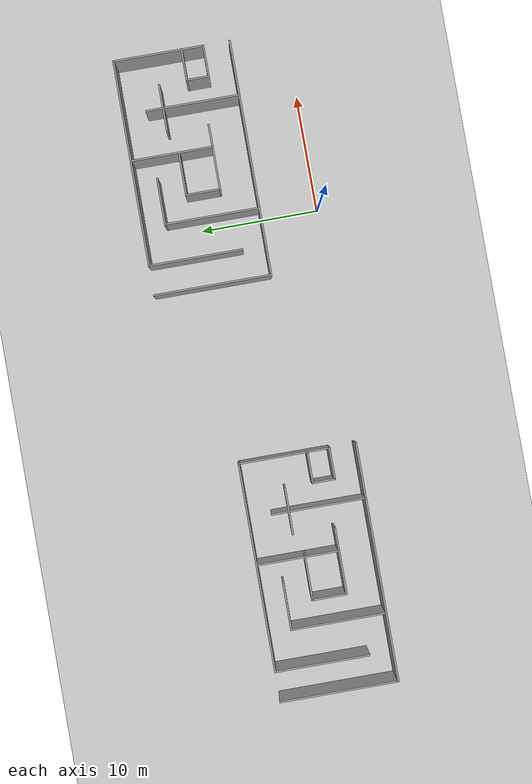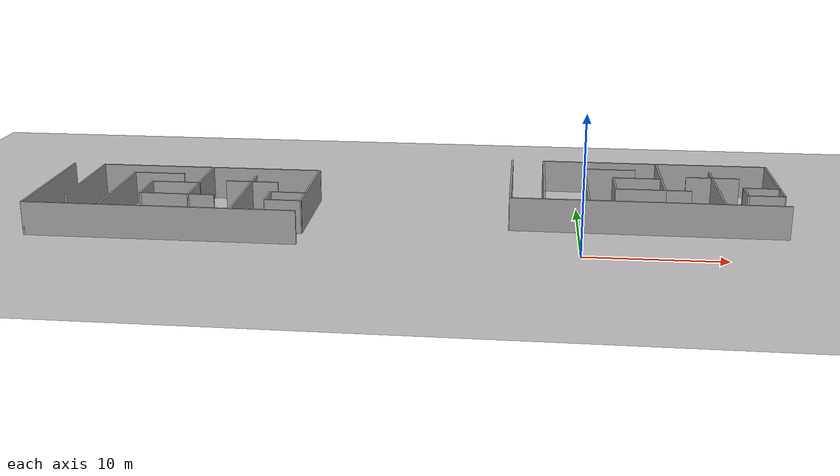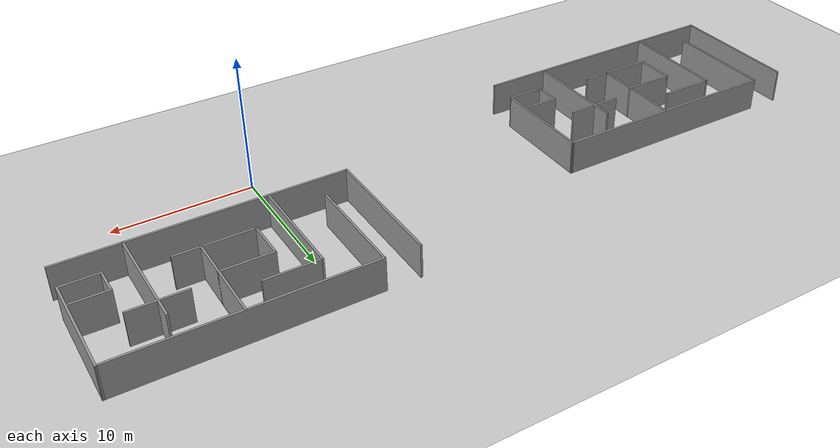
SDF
<sdf version="1.6">
 <world name="default">
  <light name="sun" type="directional">
   <pose>0 0 10 0 -0 0</pose>
   <diffuse>0.8 0.8 0.8 1</diffuse>
   <specular>0.2 0.2 0.2 1</specular>
   <attenuation>
    <range>1000</range>
    <constant>0.9</constant>
    <linear>0.01</linear>
    <quadratic>0.001</quadratic>
   </attenuation>
   <direction>-0.5 0.1 -0.9</direction>
  </light>
  <model name="ground_plane">
   <static>1</static>
   <link name="link">
    <collision name="collision">
     <geometry><plane><normal>0 0 1</normal><size>100 100</size></plane></geometry>
     <surface>
      <contact><collide_bitmask>65535</collide_bitmask></contact>
      <friction><ode><mu>100</mu><mu2>50</mu2></ode></friction>
     </surface>
    </collision>
    <visual name="visual">
     <cast_shadows>0</cast_shadows>
     <geometry><plane><normal>0 0 1</normal><size>100 100</size></plane></geometry>
     <material>
      <script><uri>file://media/materials/scripts/gazebo.material</uri><name>Gazebo/Grey</name></script>
     </material>
    </visual>
   </link>
  </model>
  <gravity>0 0 -9.8</gravity>
  <magnetic_field>6e-06 2.3e-05 -4.2e-05</magnetic_field>
  <atmosphere type="adiabatic"/>
  <physics name="default_physics" default="0" type="ode">
   <max_step_size>0.001</max_step_size>
   <real_time_factor>1</real_time_factor>
   <real_time_update_rate>1000</real_time_update_rate>
  </physics>
  <scene><ambient>0.4 0.4 0.4 1</ambient><background>0.7 0.7 0.7 1</background><shadows>1</shadows></scene>
  <spherical_coordinates>
   <surface_model>EARTH_WGS84</surface_model>
   <latitude_deg>0</latitude_deg>
   <longitude_deg>0</longitude_deg>
   <elevation>0</elevation>
   <heading_deg>0</heading_deg>
  </spherical_coordinates>
  <model name="train_8">
   <pose>4.94907 9.85301 0 0 -0 0</pose>
   <link name="Wall_1">
    <collision name="Wall_1_Collision">
     <geometry><box><size>10 0.15 2.5</size></box></geometry>
     <pose>0 0 1.25 0 -0 0</pose>
    </collision>
    <visual name="Wall_1_Visual">
     <pose>0 0 1.25 0 -0 0</pose>
     <geometry><box><size>10 0.15 2.5</size></box></geometry>
     <material>
      <script><uri>file://media/materials/scripts/gazebo.material</uri><name>Gazebo/Grey</name></script>
      <ambient>1 1 1 1</ambient>
     </material>
     <meta><layer>0</layer></meta>
    </visual>
    <pose>-9.92506 -5.7e-05 0 0 0 -1.5708</pose>
   </link>
   <link name="Wall_10">
    <collision name="Wall_10_Collision">
     <geometry><box><size>8 0.15 2.5</size></box></geometry>
     <pose>0 0 1.25 0 -0 0</pose>
    </collision>
    <visual name="Wall_10_Visual">
     <pose>0 0 1.25 0 -0 0</pose>
     <geometry><box><size>8 0.15 2.5</size></box></geometry>
     <material>
      <script><uri>file://media/materials/scripts/gazebo.material</uri><name>Gazebo/Grey</name></script>
      <ambient>1 1 1 1</ambient>
     </material>
     <meta><layer>0</layer></meta>
    </visual>
    <pose>-4.25956 -0.905556 0 0 0 -1.5708</pose>
   </link>
   <link name="Wall_17">
    <collision name="Wall_17_Collision">
     <geometry><box><size>4 0.15 2.5</size></box></geometry>
     <pose>0 0 1.25 0 -0 0</pose>
    </collision>
    <visual name="Wall_17_Visual">
     <pose>0 0 1.25 0 -0 0</pose>
     <geometry><box><size>4 0.15 2.5</size></box></geometry>
     <material>
      <script><uri>file://media/materials/scripts/gazebo.material</uri><name>Gazebo/Grey</name></script>
      <ambient>1 1 1 1</ambient>
     </material>
     <meta><layer>0</layer></meta>
    </visual>
    <pose>-2.33456 3.01944 0 0 -0 0</pose>
   </link>
   <link name="Wall_19">
    <collision name="Wall_19_Collision">
     <geometry><box><size>7 0.15 2.5</size></box></geometry>
     <pose>0 0 1.25 0 -0 0</pose>
    </collision>
    <visual name="Wall_19_Visual">
     <pose>0 0 1.25 0 -0 0</pose>
     <geometry><box><size>7 0.15 2.5</size></box></geometry>
     <material>
      <script><uri>file://media/materials/scripts/gazebo.material</uri><name>Gazebo/Grey</name></script>
      <ambient>1 1 1 1</ambient>
     </material>
     <meta><layer>0</layer></meta>
    </visual>
    <pose>1.44044 1.44444 0 0 -0 1.5708</pose>
   </link>
   <link name="Wall_2">
    <collision name="Wall_2_Collision">
     <geometry><box><size>20 0.15 2.5</size></box></geometry>
     <pose>0 0 1.25 0 -0 0</pose>
    </collision>
    <visual name="Wall_2_Visual">
     <pose>0 0 1.25 0 -0 0</pose>
     <geometry><box><size>20 0.15 2.5</size></box></geometry>
     <material>
      <script><uri>file://media/materials/scripts/gazebo.material</uri><name>Gazebo/Grey</name></script>
      <ambient>1 1 1 1</ambient>
     </material>
     <meta><layer>0</layer></meta>
    </visual>
    <pose>-5.6e-05 -4.92506 0 0 -0 0</pose>
   </link>
   <link name="Wall_23">
    <collision name="Wall_23_Collision">
     <geometry><box><size>3.75 0.15 2.5</size></box></geometry>
     <pose>0 0 1.25 0 -0 0</pose>
    </collision>
    <visual name="Wall_23_Visual">
     <pose>0 0 1.25 0 -0 0</pose>
     <geometry><box><size>3.75 0.15 2.5</size></box></geometry>
     <material>
      <script><uri>file://media/materials/scripts/gazebo.material</uri><name>Gazebo/Grey</name></script>
      <ambient>1 1 1 1</ambient>
     </material>
     <meta><layer>0</layer></meta>
    </visual>
    <pose>-0.359556 -1.98056 0 0 -0 3.14159</pose>
   </link>
   <link name="Wall_24">
    <collision name="Wall_24_Collision">
     <geometry><box><size>3 0.15 2.5</size></box></geometry>
     <pose>0 0 1.25 0 -0 0</pose>
    </collision>
    <visual name="Wall_24_Visual">
     <pose>0 0 1.25 0 -0 0</pose>
     <geometry><box><size>3 0.15 2.5</size></box></geometry>
     <material>
      <script><uri>file://media/materials/scripts/gazebo.material</uri><name>Gazebo/Grey</name></script>
      <ambient>1 1 1 1</ambient>
     </material>
     <meta><layer>0</layer></meta>
    </visual>
    <pose>-2.15956 -0.555557 0 0 -0 1.5708</pose>
   </link>
   <link name="Wall_25">
    <collision name="Wall_25_Collision">
     <geometry><box><size>3.75 0.15 2.5</size></box></geometry>
     <pose>0 0 1.25 0 -0 0</pose>
    </collision>
    <visual name="Wall_25_Visual">
     <pose>0 0 1.25 0 -0 0</pose>
     <geometry><box><size>3.75 0.15 2.5</size></box></geometry>
     <material>
      <script><uri>file://media/materials/scripts/gazebo.material</uri><name>Gazebo/Grey</name></script>
      <ambient>1 1 1 1</ambient>
     </material>
     <meta><layer>0</layer></meta>
    </visual>
    <pose>-0.359556 0.869444 0 0 -0 0</pose>
   </link>
   <link name="Wall_32">
    <collision name="Wall_32_Collision">
     <geometry><box><size>8 0.15 2.5</size></box></geometry>
     <pose>0 0 1.25 0 -0 0</pose>
    </collision>
    <visual name="Wall_32_Visual">
     <pose>0 0 1.25 0 -0 0</pose>
     <geometry><box><size>8 0.15 2.5</size></box></geometry>
     <material>
      <script><uri>file://media/materials/scripts/gazebo.material</uri><name>Gazebo/Grey</name></script>
      <ambient>1 1 1 1</ambient>
     </material>
     <meta><layer>0</layer></meta>
    </visual>
    <pose>5.33644 -0.998057 0 0 -0 1.5708</pose>
   </link>
   <link name="Wall_35">
    <collision name="Wall_35_Collision">
     <geometry><box><size>4 0.15 2.5</size></box></geometry>
     <pose>0 0 1.25 0 -0 0</pose>
    </collision>
    <visual name="Wall_35_Visual">
     <pose>0 0 1.25 0 -0 0</pose>
     <geometry><box><size>4 0.15 2.5</size></box></geometry>
     <material>
      <script><uri>file://media/materials/scripts/gazebo.material</uri><name>Gazebo/Grey</name></script>
      <ambient>1 1 1 1</ambient>
     </material>
     <meta><layer>0</layer></meta>
    </visual>
    <pose>5.36544 1.51944 0 0 -0 3.14159</pose>
   </link>
   <link name="Wall_38">
    <collision name="Wall_38_Collision">
     <geometry><box><size>2 0.15 2.5</size></box></geometry>
     <pose>0 0 1.25 0 -0 0</pose>
    </collision>
    <visual name="Wall_38_Visual">
     <pose>0 0 1.25 0 -0 0</pose>
     <geometry><box><size>2 0.15 2.5</size></box></geometry>
     <material>
      <script><uri>file://media/materials/scripts/gazebo.material</uri><name>Gazebo/Grey</name></script>
      <ambient>1 1 1 1</ambient>
     </material>
     <meta><layer>0</layer></meta>
    </visual>
    <pose>2.36544 -1.98056 0 0 -0 0</pose>
   </link>
   <link name="Wall_41">
    <collision name="Wall_41_Collision">
     <geometry><box><size>2.75 0.15 2.5</size></box></geometry>
     <pose>0 0 1.25 0 -0 0</pose>
    </collision>
    <visual name="Wall_41_Visual">
     <pose>0 0 1.25 0 -0 0</pose>
     <geometry><box><size>2.75 0.15 2.5</size></box></geometry>
     <material>
      <script><uri>file://media/materials/scripts/gazebo.material</uri><name>Gazebo/Grey</name></script>
      <ambient>1 1 1 1</ambient>
     </material>
     <meta><layer>0</layer></meta>
    </visual>
    <pose>8.60194 -0.830557 0 0 -0 0</pose>
   </link>
   <link name="Wall_43">
    <collision name="Wall_43_Collision">
     <geometry><box><size>2 0.15 2.5</size></box></geometry>
     <pose>0 0 1.25 0 -0 0</pose>
    </collision>
    <visual name="Wall_43_Visual">
     <pose>0 0 1.25 0 -0 0</pose>
     <geometry><box><size>2 0.15 2.5</size></box></geometry>
     <material>
      <script><uri>file://media/materials/scripts/gazebo.material</uri><name>Gazebo/Grey</name></script>
      <ambient>1 1 1 1</ambient>
     </material>
     <meta><layer>0</layer></meta>
    </visual>
    <pose>7.31344 -1.75556 0 0 0 -1.5708</pose>
   </link>
   <link name="Wall_44">
    <collision name="Wall_44_Collision">
     <geometry><box><size>2.75 0.15 2.5</size></box></geometry>
     <pose>0 0 1.25 0 -0 0</pose>
    </collision>
    <visual name="Wall_44_Visual">
     <pose>0 0 1.25 0 -0 0</pose>
     <geometry><box><size>2.75 0.15 2.5</size></box></geometry>
     <material>
      <script><uri>file://media/materials/scripts/gazebo.material</uri><name>Gazebo/Grey</name></script>
      <ambient>1 1 1 1</ambient>
     </material>
     <meta><layer>0</layer></meta>
    </visual>
    <pose>8.61344 -2.68056 0 0 -0 0</pose>
   </link>
   <link name="Wall_46">
    <collision name="Wall_46_Collision">
     <geometry><box><size>7.75551 0.15 2.5</size></box></geometry>
     <pose>0 0 1.25 0 -0 0</pose>
    </collision>
    <visual name="Wall_46_Visual">
     <pose>0 0 1.25 0 -0 0</pose>
     <geometry><box><size>7.75551 0.15 2.5</size></box></geometry>
     <material>
      <script><uri>file://media/materials/scripts/gazebo.material</uri><name>Gazebo/Grey</name></script>
      <ambient>1 1 1 1</ambient>
     </material>
     <meta><layer>0</layer></meta>
    </visual>
    <pose>9.91919 1.12219 0 0 0 -1.57231</pose>
   </link>
   <link name="Wall_49">
    <collision name="Wall_49_Collision">
     <geometry><box><size>17.5 0.15 2.5</size></box></geometry>
     <pose>0 0 1.25 0 -0 0</pose>
    </collision>
    <visual name="Wall_49_Visual">
     <pose>0 0 1.25 0 -0 0</pose>
     <geometry><box><size>17.5 0.15 2.5</size></box></geometry>
     <material>
      <script><uri>file://media/materials/scripts/gazebo.material</uri><name>Gazebo/Grey</name></script>
      <ambient>1 1 1 1</ambient>
     </material>
     <meta><layer>0</layer></meta>
    </visual>
    <pose>1.24994 4.92494 0 0 -0 3.14159</pose>
   </link>
   <link name="Wall_7">
    <collision name="Wall_7_Collision">
     <geometry><box><size>8 0.15 2.5</size></box></geometry>
     <pose>0 0 1.25 0 -0 0</pose>
    </collision>
    <visual name="Wall_7_Visual">
     <pose>0 0 1.25 0 -0 0</pose>
     <geometry><box><size>8 0.15 2.5</size></box></geometry>
     <material>
      <script><uri>file://media/materials/scripts/gazebo.material</uri><name>Gazebo/Grey</name></script>
      <ambient>1 1 1 1</ambient>
     </material>
     <meta><layer>0</layer></meta>
    </visual>
    <pose>-7.42506 0.999943 0 0 -0 1.5708</pose>
   </link>
   <static>1</static>
  </model>
  <model name="train_8_clone">
   <pose>-29.8541 5.3671 0 0 -0 0</pose>
   <link name="Wall_1">
    <collision name="Wall_1_Collision">
     <geometry><box><size>10 0.15 2.5</size></box></geometry>
     <pose>0 0 1.25 0 -0 0</pose>
    </collision>
    <visual name="Wall_1_Visual">
     <pose>0 0 1.25 0 -0 0</pose>
     <geometry><box><size>10 0.15 2.5</size></box></geometry>
     <material>
      <script><uri>file://media/materials/scripts/gazebo.material</uri><name>Gazebo/Grey</name></script>
      <ambient>1 1 1 1</ambient>
     </material>
     <meta><layer>0</layer></meta>
    </visual>
    <pose>-9.92506 -5.7e-05 0 0 0 -1.5708</pose>
   </link>
   <link name="Wall_10">
    <collision name="Wall_10_Collision">
     <geometry><box><size>8 0.15 2.5</size></box></geometry>
     <pose>0 0 1.25 0 -0 0</pose>
    </collision>
    <visual name="Wall_10_Visual">
     <pose>0 0 1.25 0 -0 0</pose>
     <geometry><box><size>8 0.15 2.5</size></box></geometry>
     <material>
      <script><uri>file://media/materials/scripts/gazebo.material</uri><name>Gazebo/Grey</name></script>
      <ambient>1 1 1 1</ambient>
     </material>
     <meta><layer>0</layer></meta>
    </visual>
    <pose>-4.25956 -0.905556 0 0 0 -1.5708</pose>
   </link>
   <link name="Wall_17">
    <collision name="Wall_17_Collision">
     <geometry><box><size>4 0.15 2.5</size></box></geometry>
     <pose>0 0 1.25 0 -0 0</pose>
    </collision>
    <visual name="Wall_17_Visual">
     <pose>0 0 1.25 0 -0 0</pose>
     <geometry><box><size>4 0.15 2.5</size></box></geometry>
     <material>
      <script><uri>file://media/materials/scripts/gazebo.material</uri><name>Gazebo/Grey</name></script>
      <ambient>1 1 1 1</ambient>
     </material>
     <meta><layer>0</layer></meta>
    </visual>
    <pose>-2.33456 3.01944 0 0 -0 0</pose>
   </link>
   <link name="Wall_19">
    <collision name="Wall_19_Collision">
     <geometry><box><size>7 0.15 2.5</size></box></geometry>
     <pose>0 0 1.25 0 -0 0</pose>
    </collision>
    <visual name="Wall_19_Visual">
     <pose>0 0 1.25 0 -0 0</pose>
     <geometry><box><size>7 0.15 2.5</size></box></geometry>
     <material>
      <script><uri>file://media/materials/scripts/gazebo.material</uri><name>Gazebo/Grey</name></script>
      <ambient>1 1 1 1</ambient>
     </material>
     <meta><layer>0</layer></meta>
    </visual>
    <pose>1.44044 1.44444 0 0 -0 1.5708</pose>
   </link>
   <link name="Wall_2">
    <collision name="Wall_2_Collision">
     <geometry><box><size>20 0.15 2.5</size></box></geometry>
     <pose>0 0 1.25 0 -0 0</pose>
    </collision>
    <visual name="Wall_2_Visual">
     <pose>0 0 1.25 0 -0 0</pose>
     <geometry><box><size>20 0.15 2.5</size></box></geometry>
     <material>
      <script><uri>file://media/materials/scripts/gazebo.material</uri><name>Gazebo/Grey</name></script>
      <ambient>1 1 1 1</ambient>
     </material>
     <meta><layer>0</layer></meta>
    </visual>
    <pose>-5.6e-05 -4.92506 0 0 -0 0</pose>
   </link>
   <link name="Wall_23">
    <collision name="Wall_23_Collision">
     <geometry><box><size>3.75 0.15 2.5</size></box></geometry>
     <pose>0 0 1.25 0 -0 0</pose>
    </collision>
    <visual name="Wall_23_Visual">
     <pose>0 0 1.25 0 -0 0</pose>
     <geometry><box><size>3.75 0.15 2.5</size></box></geometry>
     <material>
      <script><uri>file://media/materials/scripts/gazebo.material</uri><name>Gazebo/Grey</name></script>
      <ambient>1 1 1 1</ambient>
     </material>
     <meta><layer>0</layer></meta>
    </visual>
    <pose>-0.359556 -1.98056 0 0 -0 3.14159</pose>
   </link>
   <link name="Wall_24">
    <collision name="Wall_24_Collision">
     <geometry><box><size>3 0.15 2.5</size></box></geometry>
     <pose>0 0 1.25 0 -0 0</pose>
    </collision>
    <visual name="Wall_24_Visual">
     <pose>0 0 1.25 0 -0 0</pose>
     <geometry><box><size>3 0.15 2.5</size></box></geometry>
     <material>
      <script><uri>file://media/materials/scripts/gazebo.material</uri><name>Gazebo/Grey</name></script>
      <ambient>1 1 1 1</ambient>
     </material>
     <meta><layer>0</layer></meta>
    </visual>
    <pose>-2.15956 -0.555557 0 0 -0 1.5708</pose>
   </link>
   <link name="Wall_25">
    <collision name="Wall_25_Collision">
     <geometry><box><size>3.75 0.15 2.5</size></box></geometry>
     <pose>0 0 1.25 0 -0 0</pose>
    </collision>
    <visual name="Wall_25_Visual">
     <pose>0 0 1.25 0 -0 0</pose>
     <geometry><box><size>3.75 0.15 2.5</size></box></geometry>
     <material>
      <script><uri>file://media/materials/scripts/gazebo.material</uri><name>Gazebo/Grey</name></script>
      <ambient>1 1 1 1</ambient>
     </material>
     <meta><layer>0</layer></meta>
    </visual>
    <pose>-0.359556 0.869444 0 0 -0 0</pose>
   </link>
   <link name="Wall_32">
    <collision name="Wall_32_Collision">
     <geometry><box><size>8 0.15 2.5</size></box></geometry>
     <pose>0 0 1.25 0 -0 0</pose>
    </collision>
    <visual name="Wall_32_Visual">
     <pose>0 0 1.25 0 -0 0</pose>
     <geometry><box><size>8 0.15 2.5</size></box></geometry>
     <material>
      <script><uri>file://media/materials/scripts/gazebo.material</uri><name>Gazebo/Grey</name></script>
      <ambient>1 1 1 1</ambient>
     </material>
     <meta><layer>0</layer></meta>
    </visual>
    <pose>5.33644 -0.998057 0 0 -0 1.5708</pose>
   </link>
   <link name="Wall_35">
    <collision name="Wall_35_Collision">
     <geometry><box><size>4 0.15 2.5</size></box></geometry>
     <pose>0 0 1.25 0 -0 0</pose>
    </collision>
    <visual name="Wall_35_Visual">
     <pose>0 0 1.25 0 -0 0</pose>
     <geometry><box><size>4 0.15 2.5</size></box></geometry>
     <material>
      <script><uri>file://media/materials/scripts/gazebo.material</uri><name>Gazebo/Grey</name></script>
      <ambient>1 1 1 1</ambient>
     </material>
     <meta><layer>0</layer></meta>
    </visual>
    <pose>5.36544 1.51944 0 0 -0 3.14159</pose>
   </link>
   <link name="Wall_38">
    <collision name="Wall_38_Collision">
     <geometry><box><size>2 0.15 2.5</size></box></geometry>
     <pose>0 0 1.25 0 -0 0</pose>
    </collision>
    <visual name="Wall_38_Visual">
     <pose>0 0 1.25 0 -0 0</pose>
     <geometry><box><size>2 0.15 2.5</size></box></geometry>
     <material>
      <script><uri>file://media/materials/scripts/gazebo.material</uri><name>Gazebo/Grey</name></script>
      <ambient>1 1 1 1</ambient>
     </material>
     <meta><layer>0</layer></meta>
    </visual>
    <pose>2.36544 -1.98056 0 0 -0 0</pose>
   </link>
   <link name="Wall_41">
    <collision name="Wall_41_Collision">
     <geometry><box><size>2.75 0.15 2.5</size></box></geometry>
     <pose>0 0 1.25 0 -0 0</pose>
    </collision>
    <visual name="Wall_41_Visual">
     <pose>0 0 1.25 0 -0 0</pose>
     <geometry><box><size>2.75 0.15 2.5</size></box></geometry>
     <material>
      <script><uri>file://media/materials/scripts/gazebo.material</uri><name>Gazebo/Grey</name></script>
      <ambient>1 1 1 1</ambient>
     </material>
     <meta><layer>0</layer></meta>
    </visual>
    <pose>8.60194 -0.830557 0 0 -0 0</pose>
   </link>
   <link name="Wall_43">
    <collision name="Wall_43_Collision">
     <geometry><box><size>2 0.15 2.5</size></box></geometry>
     <pose>0 0 1.25 0 -0 0</pose>
    </collision>
    <visual name="Wall_43_Visual">
     <pose>0 0 1.25 0 -0 0</pose>
     <geometry><box><size>2 0.15 2.5</size></box></geometry>
     <material>
      <script><uri>file://media/materials/scripts/gazebo.material</uri><name>Gazebo/Grey</name></script>
      <ambient>1 1 1 1</ambient>
     </material>
     <meta><layer>0</layer></meta>
    </visual>
    <pose>7.31344 -1.75556 0 0 0 -1.5708</pose>
   </link>
   <link name="Wall_44">
    <collision name="Wall_44_Collision">
     <geometry><box><size>2.75 0.15 2.5</size></box></geometry>
     <pose>0 0 1.25 0 -0 0</pose>
    </collision>
    <visual name="Wall_44_Visual">
     <pose>0 0 1.25 0 -0 0</pose>
     <geometry><box><size>2.75 0.15 2.5</size></box></geometry>
     <material>
      <script><uri>file://media/materials/scripts/gazebo.material</uri><name>Gazebo/Grey</name></script>
      <ambient>1 1 1 1</ambient>
     </material>
     <meta><layer>0</layer></meta>
    </visual>
    <pose>8.61344 -2.68056 0 0 -0 0</pose>
   </link>
   <link name="Wall_46">
    <collision name="Wall_46_Collision">
     <geometry><box><size>7.75551 0.15 2.5</size></box></geometry>
     <pose>0 0 1.25 0 -0 0</pose>
    </collision>
    <visual name="Wall_46_Visual">
     <pose>0 0 1.25 0 -0 0</pose>
     <geometry><box><size>7.75551 0.15 2.5</size></box></geometry>
     <material>
      <script><uri>file://media/materials/scripts/gazebo.material</uri><name>Gazebo/Grey</name></script>
      <ambient>1 1 1 1</ambient>
     </material>
     <meta><layer>0</layer></meta>
    </visual>
    <pose>9.91919 1.12219 0 0 0 -1.57231</pose>
   </link>
   <link name="Wall_49">
    <collision name="Wall_49_Collision">
     <geometry><box><size>17.5 0.15 2.5</size></box></geometry>
     <pose>0 0 1.25 0 -0 0</pose>
    </collision>
    <visual name="Wall_49_Visual">
     <pose>0 0 1.25 0 -0 0</pose>
     <geometry><box><size>17.5 0.15 2.5</size></box></geometry>
     <material>
      <script><uri>file://media/materials/scripts/gazebo.material</uri><name>Gazebo/Grey</name></script>
      <ambient>1 1 1 1</ambient>
     </material>
     <meta><layer>0</layer></meta>
    </visual>
    <pose>1.24994 4.92494 0 0 -0 3.14159</pose>
   </link>
   <link name="Wall_7">
    <collision name="Wall_7_Collision">
     <geometry><box><size>8 0.15 2.5</size></box></geometry>
     <pose>0 0 1.25 0 -0 0</pose>
    </collision>
    <visual name="Wall_7_Visual">
     <pose>0 0 1.25 0 -0 0</pose>
     <geometry><box><size>8 0.15 2.5</size></box></geometry>
     <material>
      <script><uri>file://media/materials/scripts/gazebo.material</uri><name>Gazebo/Grey</name></script>
      <ambient>1 1 1 1</ambient>
     </material>
     <meta><layer>0</layer></meta>
    </visual>
    <pose>-7.42506 0.999943 0 0 -0 1.5708</pose>
   </link>
   <static>1</static>
  </model>
 </world>
</sdf>
